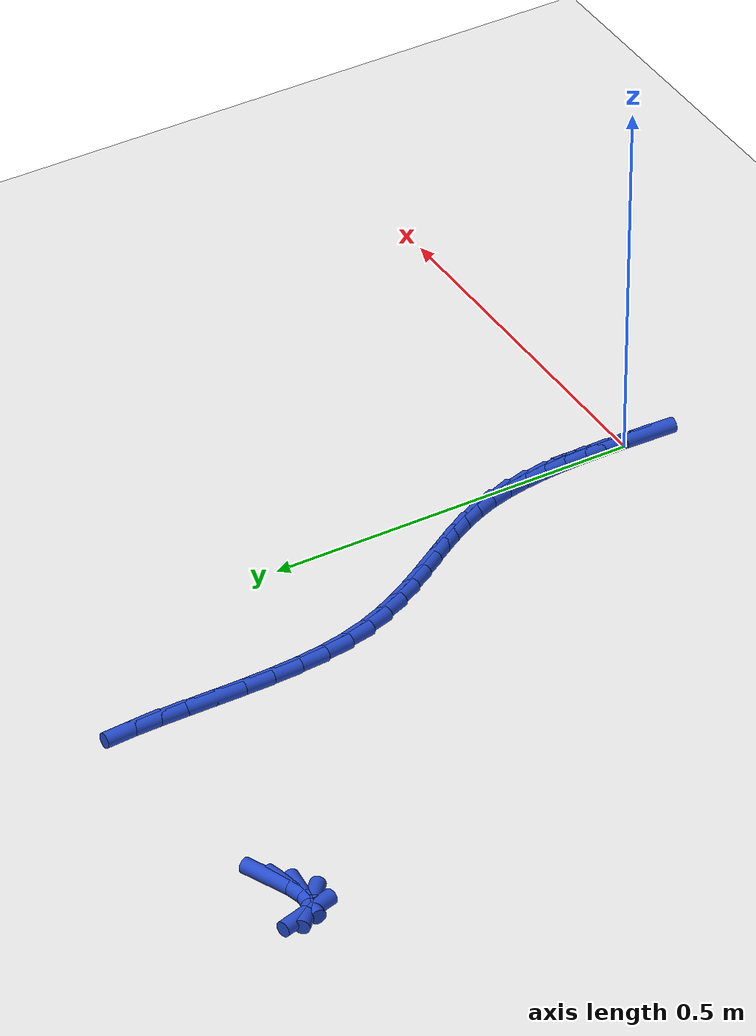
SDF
<sdf version="1.6">
 <world name="default">
  <model name="ground_plane">
   <static>1</static>
   <link name="link">
    <collision name="collision">
     <geometry><plane><normal>0 0 1</normal><size>100 100</size></plane></geometry>
     <surface><friction><ode><mu>100</mu><mu2>50</mu2></ode></friction></surface>
    </collision>
    <visual name="visual">
     <cast_shadows>0</cast_shadows>
     <geometry><plane><normal>0 0 1</normal><size>100 100</size></plane></geometry>
     <material>
      <script><uri>file://media/materials/scripts/gazebo.material</uri><name>Gazebo/WhiteGlow</name></script>
     </material>
    </visual>
   </link>
  </model>
  <model name="line">
   <link name="link_0">
    <pose>6.776263578034403e-18 4.163336342344337e-17 0.01 0 1.57 1.5602584472414145</pose>
    <collision name="collision">
     <geometry><cylinder><radius>0.01</radius><length>0.08</length></cylinder></geometry>
    </collision>
    <visual name="visual">
     <material>
      <script><name>Gazebo/Blue</name><uri>file://media/materials/scripts/gazebo.material</uri></script>
     </material>
     <geometry><cylinder><radius>0.01</radius><length>0.08</length></cylinder></geometry>
    </visual>
   </link>
   <link name="link_1">
    <pose>0.000327550277992695 0.031081979231116937 0.01 0 1.57 -1.5604792286517062</pose>
    <collision name="collision">
     <geometry><cylinder><radius>0.01</radius><length>0.08</length></cylinder></geometry>
    </collision>
    <visual name="visual">
     <material>
      <script><name>Gazebo/Blue</name><uri>file://media/materials/scripts/gazebo.material</uri></script>
     </material>
     <geometry><cylinder><radius>0.01</radius><length>0.08</length></cylinder></geometry>
    </visual>
   </link>
   <link name="link_2">
    <pose>7.099979512376422e-06 0.062140996418618887 0.01 0 1.57 -1.5299403880837856</pose>
    <collision name="collision">
     <geometry><cylinder><radius>0.01</radius><length>0.08</length></cylinder></geometry>
    </collision>
    <visual name="visual">
     <material>
      <script><name>Gazebo/Blue</name><uri>file://media/materials/scripts/gazebo.material</uri></script>
     </material>
     <geometry><cylinder><radius>0.01</radius><length>0.08</length></cylinder></geometry>
    </visual>
   </link>
   <link name="link_3">
    <pose>-0.0012528439335075456 0.09296253274069599 0.01 0 1.57 -1.488958819356093</pose>
    <collision name="collision">
     <geometry><cylinder><radius>0.01</radius><length>0.08</length></cylinder></geometry>
    </collision>
    <visual name="visual">
     <material>
      <script><name>Gazebo/Blue</name><uri>file://media/materials/scripts/gazebo.material</uri></script>
     </material>
     <geometry><cylinder><radius>0.01</radius><length>0.08</length></cylinder></geometry>
    </visual>
   </link>
   <link name="link_4">
    <pose>-0.003743774499133664 0.12333206937553831 0.01 0 1.57 -1.4364917836941322</pose>
    <collision name="collision">
     <geometry><cylinder><radius>0.01</radius><length>0.08</length></cylinder></geometry>
    </collision>
    <visual name="visual">
     <material>
      <script><name>Gazebo/Blue</name><uri>file://media/materials/scripts/gazebo.material</uri></script>
     </material>
     <geometry><cylinder><radius>0.01</radius><length>0.08</length></cylinder></geometry>
    </visual>
   </link>
   <link name="link_5">
    <pose>-0.007757184755432579 0.15303508750133601 0.01 0 1.57 -1.3713003309995035</pose>
    <collision name="collision">
     <geometry><cylinder><radius>0.01</radius><length>0.08</length></cylinder></geometry>
    </collision>
    <visual name="visual">
     <material>
      <script><name>Gazebo/Blue</name><uri>file://media/materials/scripts/gazebo.material</uri></script>
     </material>
     <geometry><cylinder><radius>0.01</radius><length>0.08</length></cylinder></geometry>
    </visual>
   </link>
   <link name="link_6">
    <pose>-0.013584567740470883 0.18185706829627912 0.01 0 1.57 -1.292129476892571</pose>
    <collision name="collision">
     <geometry><cylinder><radius>0.01</radius><length>0.08</length></cylinder></geometry>
    </collision>
    <visual name="visual">
     <material>
      <script><name>Gazebo/Blue</name><uri>file://media/materials/scripts/gazebo.material</uri></script>
     </material>
     <geometry><cylinder><radius>0.01</radius><length>0.08</length></cylinder></geometry>
    </visual>
   </link>
   <link name="link_7">
    <pose>-0.021517416492315172 0.20958349293855782 0.01 0 1.57 -1.200821880152362</pose>
    <collision name="collision">
     <geometry><cylinder><radius>0.01</radius><length>0.08</length></cylinder></geometry>
    </collision>
    <visual name="visual">
     <material>
      <script><name>Gazebo/Blue</name><uri>file://media/materials/scripts/gazebo.material</uri></script>
     </material>
     <geometry><cylinder><radius>0.01</radius><length>0.08</length></cylinder></geometry>
    </visual>
   </link>
   <link name="link_8">
    <pose>-0.03178176420711263 0.23604933644428996 0.01 0 1.57 -1.1186853893705477</pose>
    <collision name="collision">
     <geometry><cylinder><radius>0.01</radius><length>0.08</length></cylinder></geometry>
    </collision>
    <visual name="visual">
     <material>
      <script><name>Gazebo/Blue</name><uri>file://media/materials/scripts/gazebo.material</uri></script>
     </material>
     <geometry><cylinder><radius>0.01</radius><length>0.08</length></cylinder></geometry>
    </visual>
   </link>
   <link name="link_9">
    <pose>-0.04412031726949272 0.26145501465825977 0.01 0 1.57 -1.0571818020051702</pose>
    <collision name="collision">
     <geometry><cylinder><radius>0.01</radius><length>0.08</length></cylinder></geometry>
    </collision>
    <visual name="visual">
     <material>
      <script><name>Gazebo/Blue</name><uri>file://media/materials/scripts/gazebo.material</uri></script>
     </material>
     <geometry><cylinder><radius>0.01</radius><length>0.08</length></cylinder></geometry>
    </visual>
   </link>
   <link name="link_10">
    <pose>-0.058059334336692574 0.2861645983994355 0.01 0 1.57 -1.017278763190798</pose>
    <collision name="collision">
     <geometry><cylinder><radius>0.01</radius><length>0.08</length></cylinder></geometry>
    </collision>
    <visual name="visual">
     <material>
      <script><name>Gazebo/Blue</name><uri>file://media/materials/scripts/gazebo.material</uri></script>
     </material>
     <geometry><cylinder><radius>0.01</radius><length>0.08</length></cylinder></geometry>
    </visual>
   </link>
   <link name="link_11">
    <pose>-0.07312405695429494 0.31054292751949136 0.01 0 1.57 -0.9988128582727365</pose>
    <collision name="collision">
     <geometry><cylinder><radius>0.01</radius><length>0.08</length></cylinder></geometry>
    </collision>
    <visual name="visual">
     <material>
      <script><name>Gazebo/Blue</name><uri>file://media/materials/scripts/gazebo.material</uri></script>
     </material>
     <geometry><cylinder><radius>0.01</radius><length>0.08</length></cylinder></geometry>
    </visual>
   </link>
   <link name="link_12">
    <pose>-0.08883972666788244 0.33495484187010166 0.01 0 1.57 -1.0011046139607211</pose>
    <collision name="collision">
     <geometry><cylinder><radius>0.01</radius><length>0.08</length></cylinder></geometry>
    </collision>
    <visual name="visual">
     <material>
      <script><name>Gazebo/Blue</name><uri>file://media/materials/scripts/gazebo.material</uri></script>
     </material>
     <geometry><cylinder><radius>0.01</radius><length>0.08</length></cylinder></geometry>
    </visual>
   </link>
   <link name="link_13">
    <pose>-0.10473158502303777 0.35976518130294044 0.01 0 1.57 -1.0232447133974558</pose>
    <collision name="collision">
     <geometry><cylinder><radius>0.01</radius><length>0.08</length></cylinder></geometry>
    </collision>
    <visual name="visual">
     <material>
      <script><name>Gazebo/Blue</name><uri>file://media/materials/scripts/gazebo.material</uri></script>
     </material>
     <geometry><cylinder><radius>0.01</radius><length>0.08</length></cylinder></geometry>
    </visual>
   </link>
   <link name="link_14">
    <pose>-0.12032487356534366 0.38533878566968244 0.01 0 1.57 -1.064107800309749</pose>
    <collision name="collision">
     <geometry><cylinder><radius>0.01</radius><length>0.08</length></cylinder></geometry>
    </collision>
    <visual name="visual">
     <material>
      <script><name>Gazebo/Blue</name><uri>file://media/materials/scripts/gazebo.material</uri></script>
     </material>
     <geometry><cylinder><radius>0.01</radius><length>0.08</length></cylinder></geometry>
    </visual>
   </link>
   <link name="link_15">
    <pose>-0.13514483384038273 0.41204049482200134 0.01 0 1.57 -1.1221688708951105</pose>
    <collision name="collision">
     <geometry><cylinder><radius>0.01</radius><length>0.08</length></cylinder></geometry>
    </collision>
    <visual name="visual">
     <material>
      <script><name>Gazebo/Blue</name><uri>file://media/materials/scripts/gazebo.material</uri></script>
     </material>
     <geometry><cylinder><radius>0.01</radius><length>0.08</length></cylinder></geometry>
    </visual>
   </link>
   <link name="link_16">
    <pose>-0.14871670739373774 0.4402351486115721 0.01 0 1.57 -1.1952320423755725</pose>
    <collision name="collision">
     <geometry><cylinder><radius>0.01</radius><length>0.08</length></cylinder></geometry>
    </collision>
    <visual name="visual">
     <material>
      <script><name>Gazebo/Blue</name><uri>file://media/materials/scripts/gazebo.material</uri></script>
     </material>
     <geometry><cylinder><radius>0.01</radius><length>0.08</length></cylinder></geometry>
    </visual>
   </link>
   <link name="link_17">
    <pose>-0.16056573577099126 0.4702875868900684 0.01 0 1.57 -1.2802236266488023</pose>
    <collision name="collision">
     <geometry><cylinder><radius>0.01</radius><length>0.08</length></cylinder></geometry>
    </collision>
    <visual name="visual">
     <material>
      <script><name>Gazebo/Blue</name><uri>file://media/materials/scripts/gazebo.material</uri></script>
     </material>
     <geometry><cylinder><radius>0.01</radius><length>0.08</length></cylinder></geometry>
    </visual>
   </link>
   <link name="link_18">
    <pose>-0.1702171605177262 0.5025626495091651 0.01 0 1.57 -1.371848461038212</pose>
    <collision name="collision">
     <geometry><cylinder><radius>0.01</radius><length>0.08</length></cylinder></geometry>
    </collision>
    <visual name="visual">
     <material>
      <script><name>Gazebo/Blue</name><uri>file://media/materials/scripts/gazebo.material</uri></script>
     </material>
     <geometry><cylinder><radius>0.01</radius><length>0.08</length></cylinder></geometry>
    </visual>
   </link>
   <link name="link_19">
    <pose>-0.17723706331857306 0.5373810224213147 0.01 0 1.57 -1.4495256472525202</pose>
    <collision name="collision">
     <geometry><cylinder><radius>0.01</radius><length>0.08</length></cylinder></geometry>
    </collision>
    <visual name="visual">
     <material>
      <script><name>Gazebo/Blue</name><uri>file://media/materials/scripts/gazebo.material</uri></script>
     </material>
     <geometry><cylinder><radius>0.01</radius><length>0.08</length></cylinder></geometry>
    </visual>
   </link>
   <link name="link_20">
    <pose>-0.18175510829779734 0.574454080180369 0.01 0 1.57 -1.5046508420633022</pose>
    <collision name="collision">
     <geometry><cylinder><radius>0.01</radius><length>0.08</length></cylinder></geometry>
    </collision>
    <visual name="visual">
     <material>
      <script><name>Gazebo/Blue</name><uri>file://media/materials/scripts/gazebo.material</uri></script>
     </material>
     <geometry><cylinder><radius>0.01</radius><length>0.08</length></cylinder></geometry>
    </visual>
   </link>
   <link name="link_21">
    <pose>-0.18431172447356337 0.6130491030703854 0.01 0 1.57 -1.541726305210649</pose>
    <collision name="collision">
     <geometry><cylinder><radius>0.01</radius><length>0.08</length></cylinder></geometry>
    </collision>
    <visual name="visual">
     <material>
      <script><name>Gazebo/Blue</name><uri>file://media/materials/scripts/gazebo.material</uri></script>
     </material>
     <geometry><cylinder><radius>0.01</radius><length>0.08</length></cylinder></geometry>
    </visual>
   </link>
   <link name="link_22">
    <pose>-0.18545665577946105 0.6524233006497441 0.01 0 1.57 -1.563615882027607</pose>
    <collision name="collision">
     <geometry><cylinder><radius>0.01</radius><length>0.08</length></cylinder></geometry>
    </collision>
    <visual name="visual">
     <material>
      <script><name>Gazebo/Blue</name><uri>file://media/materials/scripts/gazebo.material</uri></script>
     </material>
     <geometry><cylinder><radius>0.01</radius><length>0.08</length></cylinder></geometry>
    </visual>
   </link>
   <link name="link_23">
    <pose>-0.18573964614908062 0.691833882476826 0.01 0 1.57 1.5700417149979273</pose>
    <collision name="collision">
     <geometry><cylinder><radius>0.01</radius><length>0.08</length></cylinder></geometry>
    </collision>
    <visual name="visual">
     <material>
      <script><name>Gazebo/Blue</name><uri>file://media/materials/scripts/gazebo.material</uri></script>
     </material>
     <geometry><cylinder><radius>0.01</radius><length>0.08</length></cylinder></geometry>
    </visual>
   </link>
   <link name="link_24">
    <pose>-0.18571043951601204 0.730538058110012 0.01 0 1.57 -1.5652041044496232</pose>
    <collision name="collision">
     <geometry><cylinder><radius>0.01</radius><length>0.08</length></cylinder></geometry>
    </collision>
    <visual name="visual">
     <material>
      <script><name>Gazebo/Blue</name><uri>file://media/materials/scripts/gazebo.material</uri></script>
     </material>
     <geometry><cylinder><radius>0.01</radius><length>0.08</length></cylinder></geometry>
    </visual>
   </link>
   <link name="link_25">
    <pose>-0.18591877981384533 0.7677930371076824 0.01 0 1.57 -1.5424084556160356</pose>
    <collision name="collision">
     <geometry><cylinder><radius>0.01</radius><length>0.08</length></cylinder></geometry>
    </collision>
    <visual name="visual">
     <material>
      <script><name>Gazebo/Blue</name><uri>file://media/materials/scripts/gazebo.material</uri></script>
     </material>
     <geometry><cylinder><radius>0.01</radius><length>0.08</length></cylinder></geometry>
    </visual>
   </link>
   <link name="link_26">
    <pose>-0.18691441097617056 0.8028560290282181 0.01 0 1.57 -1.4983185978556681</pose>
    <collision name="collision">
     <geometry><cylinder><radius>0.01</radius><length>0.08</length></cylinder></geometry>
    </collision>
    <visual name="visual">
     <material>
      <script><name>Gazebo/Blue</name><uri>file://media/materials/scripts/gazebo.material</uri></script>
     </material>
     <geometry><cylinder><radius>0.01</radius><length>0.08</length></cylinder></geometry>
    </visual>
   </link>
   <link name="link_41">
    <pose>-0.5065965333869424 0.7949647170727063 0.01 0 1.57 0.40815086902002784</pose>
    <collision name="collision">
     <geometry><cylinder><radius>0.01</radius><length>0.08</length></cylinder></geometry>
    </collision>
    <visual name="visual">
     <material>
      <script><name>Gazebo/Blue</name><uri>file://media/materials/scripts/gazebo.material</uri></script>
     </material>
     <geometry><cylinder><radius>0.01</radius><length>0.08</length></cylinder></geometry>
    </visual>
   </link>
   <link name="link_42">
    <pose>-0.5321424264422424 0.7839177908721174 0.01 0 1.57 0.2456245835175273</pose>
    <collision name="collision">
     <geometry><cylinder><radius>0.01</radius><length>0.08</length></cylinder></geometry>
    </collision>
    <visual name="visual">
     <material>
      <script><name>Gazebo/Blue</name><uri>file://media/materials/scripts/gazebo.material</uri></script>
     </material>
     <geometry><cylinder><radius>0.01</radius><length>0.08</length></cylinder></geometry>
    </visual>
   </link>
   <link name="link_43">
    <pose>-0.5535031908160996 0.778562937721135 0.01 0 1.57 -0.10422909891074461</pose>
    <collision name="collision">
     <geometry><cylinder><radius>0.01</radius><length>0.08</length></cylinder></geometry>
    </collision>
    <visual name="visual">
     <material>
      <script><name>Gazebo/Blue</name><uri>file://media/materials/scripts/gazebo.material</uri></script>
     </material>
     <geometry><cylinder><radius>0.01</radius><length>0.08</length></cylinder></geometry>
    </visual>
   </link>
   <link name="link_44">
    <pose>-0.5697584714102601 0.7802633731104844 0.01 0 1.57 -0.7570392654841966</pose>
    <collision name="collision">
     <geometry><cylinder><radius>0.01</radius><length>0.08</length></cylinder></geometry>
    </collision>
    <visual name="visual">
     <material>
      <script><name>Gazebo/Blue</name><uri>file://media/materials/scripts/gazebo.material</uri></script>
     </material>
     <geometry><cylinder><radius>0.01</radius><length>0.08</length></cylinder></geometry>
    </visual>
   </link>
   <link name="link_45">
    <pose>-0.5801843101157783 0.7901140383133227 0.01 0 1.57 -1.286753402161795</pose>
    <collision name="collision">
     <geometry><cylinder><radius>0.01</radius><length>0.08</length></cylinder></geometry>
    </collision>
    <visual name="visual">
     <material>
      <script><name>Gazebo/Blue</name><uri>file://media/materials/scripts/gazebo.material</uri></script>
     </material>
     <geometry><cylinder><radius>0.01</radius><length>0.08</length></cylinder></geometry>
    </visual>
   </link>
   <link name="link_289">
    <pose>-0.0007598320357578392 -0.03091702866146697 0.01 0 1.57 1.5462247834230431</pose>
    <collision name="collision">
     <geometry><cylinder><radius>0.01</radius><length>0.08</length></cylinder></geometry>
    </collision>
    <visual name="visual">
     <material>
      <script><name>Gazebo/Blue</name><uri>file://media/materials/scripts/gazebo.material</uri></script>
     </material>
     <geometry><cylinder><radius>0.01</radius><length>0.08</length></cylinder></geometry>
    </visual>
   </link>
   <link name="link_290">
    <pose>1.1546753136970622e-17 1.249000902703301e-16 0.01 0 1.57 1.55783199893154</pose>
    <collision name="collision">
     <geometry><cylinder><radius>0.01</radius><length>0.08</length></cylinder></geometry>
    </collision>
    <visual name="visual">
     <material>
      <script><name>Gazebo/Blue</name><uri>file://media/materials/scripts/gazebo.material</uri></script>
     </material>
     <geometry><cylinder><radius>0.01</radius><length>0.08</length></cylinder></geometry>
    </visual>
   </link>
   <link name="link_291">
    <pose>0.00040332449735144046 0.03110858543966116 0.01 0 1.57 1.5640763932078814</pose>
    <collision name="collision">
     <geometry><cylinder><radius>0.01</radius><length>0.08</length></cylinder></geometry>
    </collision>
    <visual name="visual">
     <material>
      <script><name>Gazebo/Blue</name><uri>file://media/materials/scripts/gazebo.material</uri></script>
     </material>
     <geometry><cylinder><radius>0.01</radius><length>0.08</length></cylinder></geometry>
    </visual>
   </link>
   <link name="link_292">
    <pose>0.0006132937343823751 0.06235384608697972 0.01 0 1.57 1.5609609437811183</pose>
    <collision name="collision">
     <geometry><cylinder><radius>0.01</radius><length>0.08</length></cylinder></geometry>
    </collision>
    <visual name="visual">
     <material>
      <script><name>Gazebo/Blue</name><uri>file://media/materials/scripts/gazebo.material</uri></script>
     </material>
     <geometry><cylinder><radius>0.01</radius><length>0.08</length></cylinder></geometry>
    </visual>
   </link>
  </model>
 </world>
</sdf>
